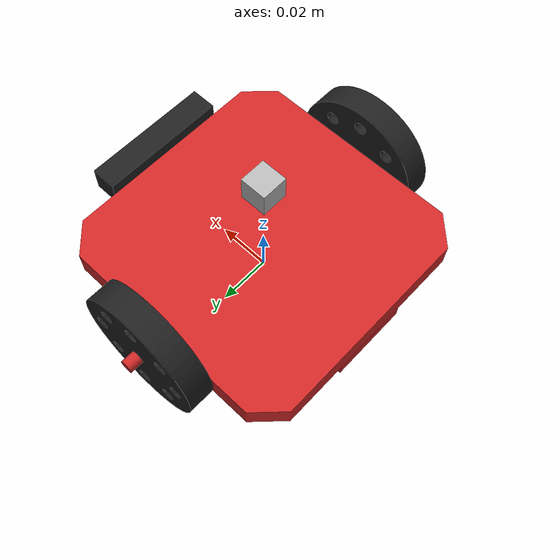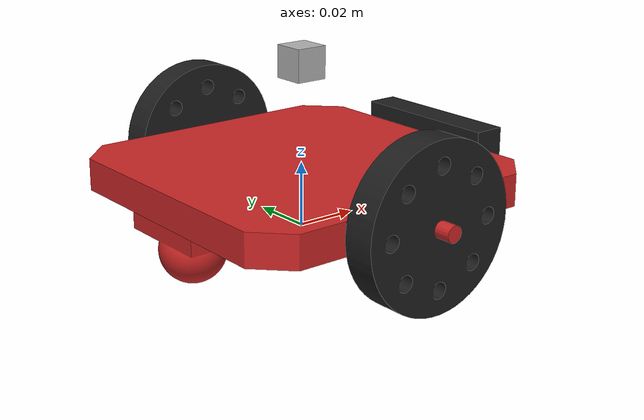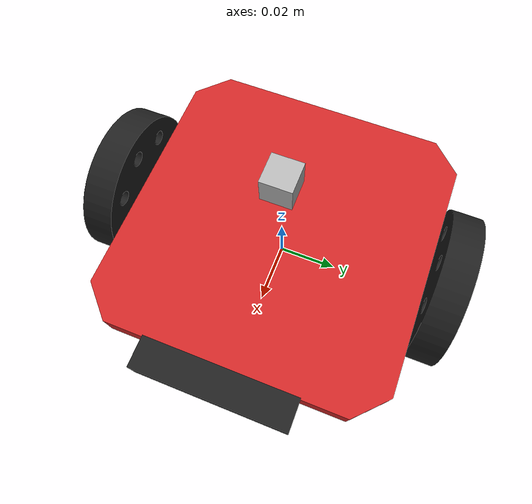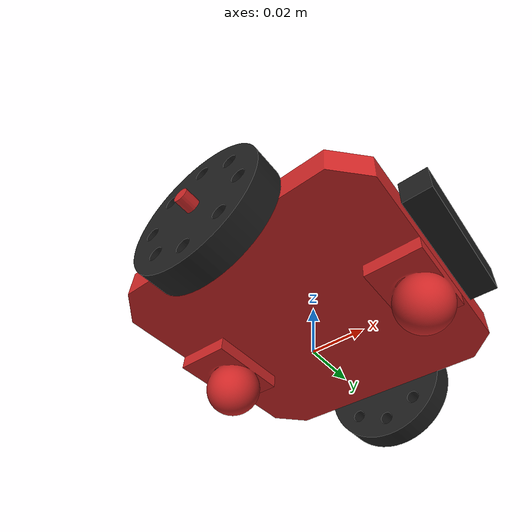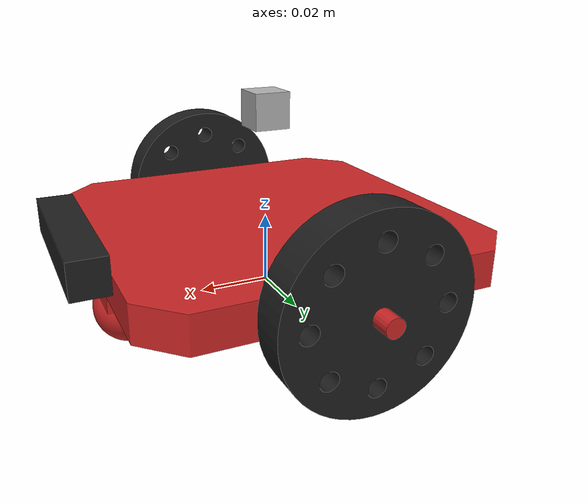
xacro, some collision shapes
<?xml version="1.0"?>
<robot name="robot_ros" xmlns:xacro="http://www.ros.org/wiki/xacro">
    <xacro:include filename="$(find robot_ros_description)/urdf/frame.xacro"/>
    <xacro:include filename="$(find robot_ros_description)/urdf/wheels.xacro"/>
    <xacro:include filename="$(find robot_ros_description)/urdf/ball.xacro"/>
    <xacro:include filename="$(find robot_ros_description)/urdf/cam.xacro"/>
    <xacro:include filename="$(find robot_ros_description)/urdf/lidar.xacro"/>
</robot>

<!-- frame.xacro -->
<robot name="robot_ros" xmlns:xacro="http://www.ros.org/wiki/xacro">
    <link name="robot_foot_step"/>
    <joint name="robot_foot" type="fixed">
        <parent link="robot_foot_step"/>
        <child link="base"/>
        <origin rpy="0 0 0" xyz="0 0 0.021"/>
    </joint>
    <link name="base">
        <inertial>
            <mass value="0.5"/>
            <origin xyz="0 0 0" rpy=" 0 0 0"/>
            <inertia
                ixx="0" ixy="0" ixz="0"
                iyy="0" iyz="0"
                izz="0"
            />
        </inertial>

        <collision name='collision'>
            <geometry>
                <mesh filename="package://robot_ros_description/urdffile/frame.STL"/>
            </geometry>
        </collision>

        <visual name='chassis_visual'>
            <origin xyz="0 0 0" rpy=" 0 0 0"/>
            <geometry>
                <mesh filename="package://robot_ros_description/urdffile/frame.STL"/>
            </geometry>
             <material name="red"/>
        </visual>

  </link>
</robot>

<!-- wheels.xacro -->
<robot name="robot_ros" xmlns:xacro="http://www.ros.org/wiki/xacro">
    <joint name="wheels_l" type="continuous">
        <parent link="base"/>
        <child link="wheels_left"/>
        <origin rpy="0 0 0" xyz="0 0.055 -0.005"/>
    </joint>
    <link name="wheels_left">
        <inertial>
            <mass value="0.5"/>
            <origin xyz="0 0 0" rpy=" 0 0 0.01"/>
            <inertia
                ixx="0" ixy="0" ixz="0"
                iyy="0.01" iyz="0"
                izz="0"
            />
        </inertial>

        <collision name='collision'>
            <geometry>
                <mesh filename="package://robot_ros_description/urdffile/wheels.STL"/>
            </geometry>
        </collision>

        <visual name='chassis_visual'>
            <origin xyz="0 0 0" rpy=" 0 0 0"/>
            <geometry>
                <mesh filename="package://robot_ros_description/urdffile/wheels.STL"/>
            </geometry>
             <material name="black"/>
        </visual>

  </link>
  <joint name="wheels_r" type="continuous">
        <parent link="base"/>
        <child link="wheels_right"/>
        <origin rpy="0 0 0" xyz="0 -0.055 -0.005"/>
    </joint>
    <link name="wheels_right">
        <inertial>
            <mass value="0.5"/>
            <origin xyz="0 0 0" rpy=" 0 0 0.01"/>
            <inertia
                ixx="0" ixy="0" ixz="0"
                iyy="0.01" iyz="0"
                izz="0"
            />
        </inertial>

        <collision name='collision'>
            <geometry>
                <mesh filename="package://robot_ros_description/urdffile/wheels.STL"/>
            </geometry>
        </collision>

        <visual name='chassis_visual'>
            <origin xyz="0 0 0" rpy=" 0 0 0"/>
            <geometry>
                <mesh filename="package://robot_ros_description/urdffile/wheels.STL"/>
            </geometry>
             <material name="black"/>
        </visual>

  </link>
</robot>

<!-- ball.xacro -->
<robot name="robot_ros" xmlns:xacro="http://www.ros.org/wiki/xacro">

    <joint name="ball_fn" type="fixed">
        <parent link="base"/>
        <child link="ball_fn"/>
        <origin rpy="0 0 -1.57" xyz="0.04 0 -0.01"/>
    </joint>
    <link name="ball_fn">
        <inertial>
            <mass value="0.1"/>
            <origin xyz="0 0 -0.01" rpy=" 0 0 0"/>
            <inertia
                ixx="0" ixy="0" ixz="0"
                iyy="0" iyz="0"
                izz="0"
            />
        </inertial>

        <collision name='collision'>
            <geometry>
                <mesh filename="package://robot_ros_description/urdffile/Assem2.STL"/>
            </geometry>
        </collision>

        <visual name='chassis_visual'>
            <origin xyz="0 0 0" rpy=" 0 0 0"/>
            <geometry>
                <mesh filename="package://robot_ros_description/urdffile/Assem2.STL"/>
            </geometry>
             <material name="red"/>
        </visual>

  </link>
  <joint name="ball_dr" type="fixed">
        <parent link="base"/>
        <child link="ball_dr"/>
        <origin rpy="0 0 -1.57" xyz="-0.04 0 -0.01"/>
    </joint>
    <link name="ball_dr">
        <inertial>
            <mass value="0.1"/>
            <origin xyz="0 0 -0.01" rpy=" 0 0 0"/>
            <inertia
                ixx="0" ixy="0" ixz="0"
                iyy="0" iyz="0"
                izz="0"
            />
        </inertial>

        <collision name='collision'>
            <geometry>
                <mesh filename="package://robot_ros_description/urdffile/Assem2.STL"/>
            </geometry>
        </collision>

        <visual name='chassis_visual'>
            <origin xyz="0 0 0" rpy=" 0 0 0"/>
            <geometry>
                <mesh filename="package://robot_ros_description/urdffile/Assem2.STL"/>
            </geometry>
             <material name="red"/>
        </visual>

  </link>
</robot>

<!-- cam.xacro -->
<robot name="robot_ros" xmlns:xacro="http://www.ros.org/wiki/xacro">
    <joint name="camera_joint" type="fixed">
        <axis xyz="0 1 0" />
        <origin xyz="0.055 0 0" rpy="0 0 0"/>
        <parent link="base"/>
        <child link="camera_link"/>
    </joint>

    <!-- Camera -->
    <link name="camera_link">
        <collision>
        <origin xyz="0 0 0" rpy="0 0 0"/>
        <geometry>
        <box size="0.01 0.01 0.01"/>
        </geometry>
        </collision>

        <visual>
        <origin xyz="0 0 0" rpy="0 0 0"/>
        <geometry>
        <box size="0.01 0.05 0.01"/>
        </geometry>
        <material name="black"/>
        </visual>

        <inertial>
        <mass value="1e-5" />
        <origin xyz="0 0 0" rpy="0 0 0"/>
        <inertia ixx="1e-6" ixy="0" ixz="0" iyy="1e-6" iyz="0" izz="1e-6" />
        </inertial>
    </link>
    <!-- camera -->
  <gazebo reference="camera_link">
    <sensor type="camera" name="camera1">
      <update_rate>30.0</update_rate>
      <camera name="head">
        <horizontal_fov>1.3962634</horizontal_fov>
        <image>
          <width>800</width>
          <height>800</height>
          <format>R8G8B8</format>
        </image>
        <clip>
          <near>0.02</near>
          <far>300</far>
        </clip>
        <noise>
          <type>gaussian</type>
          <!-- Noise is sampled independently per pixel on each frame.
               That pixel's noise value is added to each of its color
               channels, which at that point lie in the range [0,1]. -->
          <mean>0.0</mean>
          <stddev>0.007</stddev>
        </noise>
      </camera>
      <plugin name="camera_controller" filename="libgazebo_ros_camera.so">
        <alwaysOn>true</alwaysOn>
        <updateRate>0.0</updateRate>
        <cameraName>rrbot/camera1</cameraName>
        <imageTopicName>image_raw</imageTopicName>
        <cameraInfoTopicName>camera_info</cameraInfoTopicName>
        <frameName>camera_link</frameName>
        <hackBaseline>0.07</hackBaseline>
        <distortionK1>0.0</distortionK1>
        <distortionK2>0.0</distortionK2>
        <distortionK3>0.0</distortionK3>
        <distortionT1>0.0</distortionT1>
        <distortionT2>0.0</distortionT2>
      </plugin>
    </sensor>
  </gazebo>
</robot>

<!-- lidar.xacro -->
<robot name="robot_ros" xmlns:xacro="http://www.ros.org/wiki/xacro">
    <joint name="hokuyo_joint" type="fixed">
        <axis xyz="0 1 0" />
        <origin xyz="0 0 0.03" rpy="0 0 0"/>
        <parent link="base"/>
        <child link="hokuyo_link"/>
    </joint>

    <!-- Hokuyo Laser -->
    <link name="hokuyo_link">
        <collision>
        <origin xyz="0 0 0" rpy="0 0 0"/>
        <geometry>
        <box size="0.01 0.01 0.01"/>
        </geometry>
        </collision>

        <visual>
        <origin xyz="0 0 0" rpy="0 0 0"/>
        <geometry>
           <mesh filename="package://robot_ros_description/urdffile/hokuyo.dae"/>
        </geometry>
        </visual>

        <inertial>
        <mass value="0.01" />
        <origin xyz="0 0 0" rpy="0 0 0"/>
        <inertia ixx="0" ixy="0" ixz="0" iyy="0" iyz="0" izz="0" />
        </inertial>
    </link>
    <!-- hokuyo -->
    <gazebo reference="hokuyo_link">
        <sensor type="gpu_ray" name="head_hokuyo_sensor">
        <pose>0 0 0 0 0 0</pose>
        <visualize>false</visualize>
        <update_rate>40</update_rate>
        <ray>
            <scan>
            <horizontal>
                <samples>720</samples>
                <resolution>1</resolution>
                <min_angle>-1.570796</min_angle>
                <max_angle>1.570796</max_angle>
            </horizontal>
            </scan>
            <range>
            <min>0.10</min>
            <max>30.0</max>
            <resolution>0.01</resolution>
            </range>
            <noise>
            <type>gaussian</type>
            <mean>0.0</mean>
            <stddev>0.01</stddev>
            </noise>
        </ray>
        <plugin name="gazebo_ros_head_hokuyo_controller" filename="libgazebo_ros_gpu_laser.so">
            <topicName>/rrbot/laser/scan</topicName>
            <frameName>hokuyo_link</frameName>
        </plugin>
        </sensor>
    </gazebo>
</robot>
